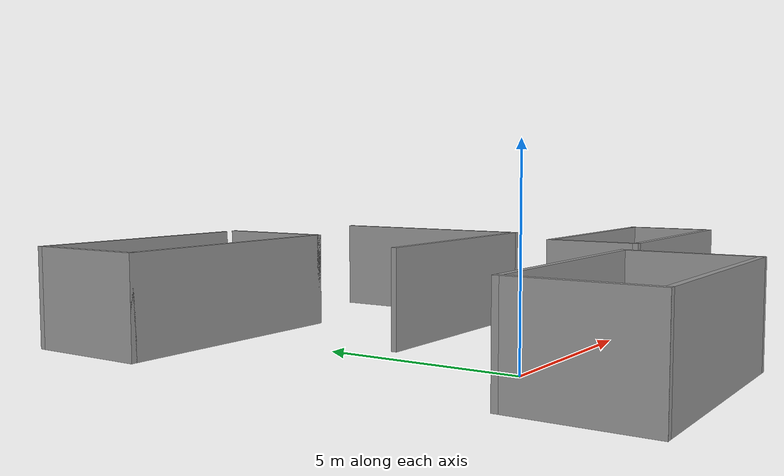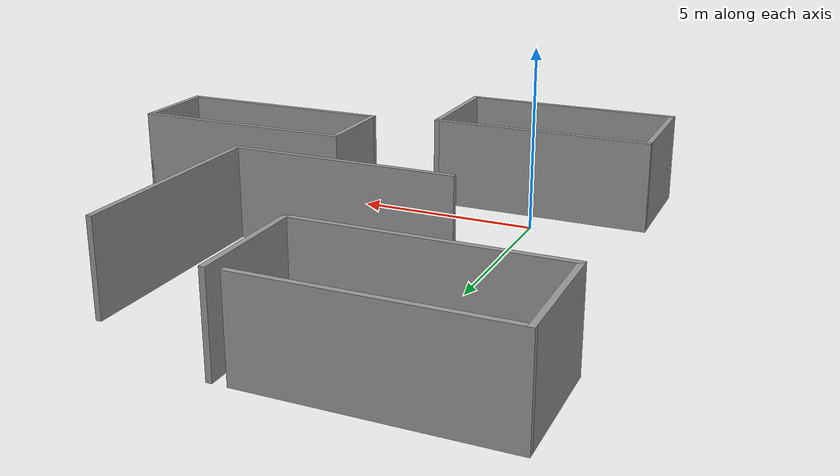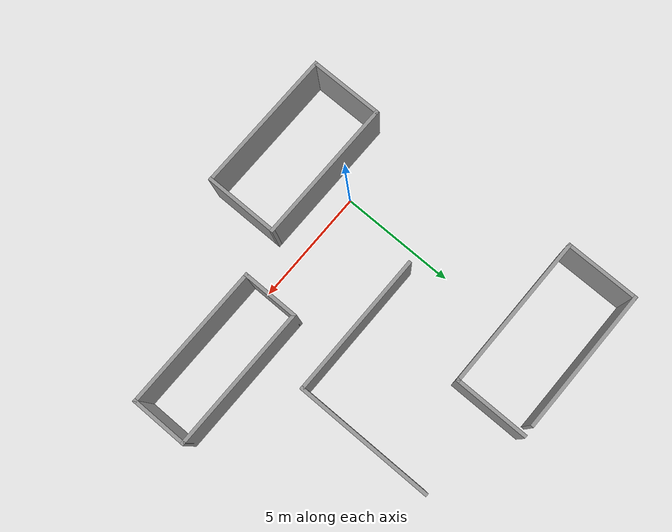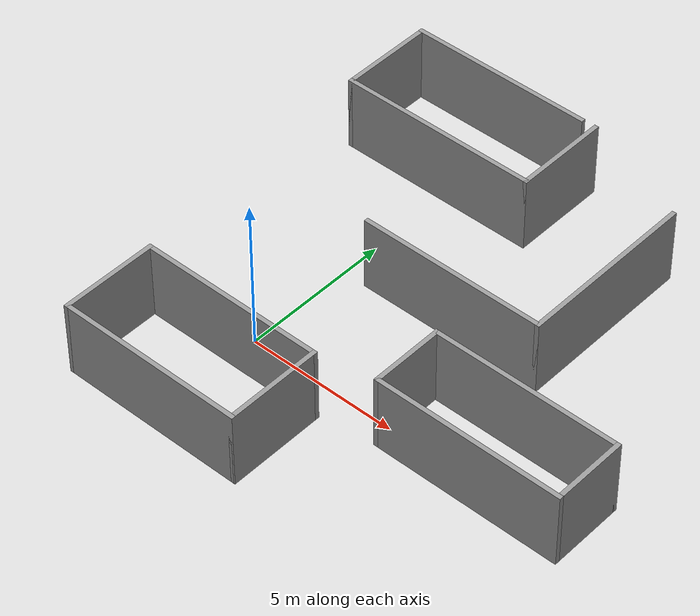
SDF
<?xml version='1.0'?>
<sdf version='1.6'>
  <model name='sim_world_diff_robot'>
    <pose frame=''>3.8281 3.45307 0 0 -0 0</pose>
    <link name='Wall_0'>
      <collision name='Wall_0_Collision'>
        <geometry>
          <box>
            <size>3.25 0.15 2.5</size>
          </box>
        </geometry>
        <pose frame=''>0 0 1.25 0 -0 0</pose>
      </collision>
      <visual name='Wall_0_Visual'>
        <pose frame=''>0 0 1.25 0 -0 0</pose>
        <geometry>
          <box>
            <size>3.25 0.15 2.5</size>
          </box>
        </geometry>
        <material>
          <script>
            <uri>file://media/materials/scripts/gazebo.material</uri>
            <name>Gazebo/Grey</name>
          </script>
          <ambient>1 1 1 1</ambient>
        </material>
        <meta>
          <layer>0</layer>
        </meta>
      </visual>
      <pose frame=''>-6.7281 -6.01307 0 0 -0 -1.5708</pose>
    </link>
    <link name='Wall_1'>
      <collision name='Wall_1_Collision'>
        <geometry>
          <box>
            <size>6.25 0.15 2.5</size>
          </box>
        </geometry>
        <pose frame=''>0 0 1.25 0 -0 0</pose>
      </collision>
      <visual name='Wall_1_Visual'>
        <pose frame=''>0 0 1.25 0 -0 0</pose>
        <geometry>
          <box>
            <size>6.25 0.15 2.5</size>
          </box>
        </geometry>
        <material>
          <script>
            <uri>file://media/materials/scripts/gazebo.material</uri>
            <name>Gazebo/Grey</name>
          </script>
          <ambient>1 1 1 1</ambient>
        </material>
        <meta>
          <layer>0</layer>
        </meta>
      </visual>
      <pose frame=''>-3.6781 -7.56307 0 0 -0 0</pose>
    </link>
    <link name='Wall_13'>
      <collision name='Wall_13_Collision'>
        <geometry>
          <box>
            <size>6.25 0.15 2.5</size>
          </box>
        </geometry>
        <pose frame=''>0 0 1.25 0 -0 0</pose>
      </collision>
      <visual name='Wall_13_Visual'>
        <pose frame=''>0 0 1.25 0 -0 0</pose>
        <geometry>
          <box>
            <size>6.25 0.15 2.5</size>
          </box>
        </geometry>
        <material>
          <script>
            <uri>file://media/materials/scripts/gazebo.material</uri>
            <name>Gazebo/Grey</name>
          </script>
          <ambient>1 1 1 1</ambient>
        </material>
        <meta>
          <layer>0</layer>
        </meta>
      </visual>
      <pose frame=''>-4.32459 7.56307 0 0 -0 3.14159</pose>
    </link>
    <link name='Wall_14'>
      <collision name='Wall_14_Collision'>
        <geometry>
          <box>
            <size>3.25 0.15 2.5</size>
          </box>
        </geometry>
        <pose frame=''>0 0 1.25 0 -0 0</pose>
      </collision>
      <visual name='Wall_14_Visual'>
        <pose frame=''>0 0 1.25 0 -0 0</pose>
        <geometry>
          <box>
            <size>3.25 0.15 2.5</size>
          </box>
        </geometry>
        <material>
          <script>
            <uri>file://media/materials/scripts/gazebo.material</uri>
            <name>Gazebo/Grey</name>
          </script>
          <ambient>1 1 1 1</ambient>
        </material>
        <meta>
          <layer>0</layer>
        </meta>
      </visual>
      <pose frame=''>-7.37459 6.01307 0 0 -0 -1.5708</pose>
    </link>
    <link name='Wall_15'>
      <collision name='Wall_15_Collision'>
        <geometry>
          <box>
            <size>6.75 0.15 2.5</size>
          </box>
        </geometry>
        <pose frame=''>0 0 1.25 0 -0 0</pose>
      </collision>
      <visual name='Wall_15_Visual'>
        <pose frame=''>0 0 1.25 0 -0 0</pose>
        <geometry>
          <box>
            <size>6.75 0.15 2.5</size>
          </box>
        </geometry>
        <material>
          <script>
            <uri>file://media/materials/scripts/gazebo.material</uri>
            <name>Gazebo/Grey</name>
          </script>
          <ambient>1 1 1 1</ambient>
        </material>
        <meta>
          <layer>0</layer>
        </meta>
      </visual>
      <pose frame=''>-4.07459 4.46307 0 0 -0 0</pose>
    </link>
    <link name='Wall_16'>
      <collision name='Wall_16_Collision'>
        <geometry>
          <box>
            <size>3.25 0.15 2.5</size>
          </box>
        </geometry>
        <pose frame=''>0 0 1.25 0 -0 0</pose>
      </collision>
      <visual name='Wall_16_Visual'>
        <pose frame=''>0 0 1.25 0 -0 0</pose>
        <geometry>
          <box>
            <size>3.25 0.15 2.5</size>
          </box>
        </geometry>
        <material>
          <script>
            <uri>file://media/materials/scripts/gazebo.material</uri>
            <name>Gazebo/Grey</name>
          </script>
          <ambient>1 1 1 1</ambient>
        </material>
        <meta>
          <layer>0</layer>
        </meta>
      </visual>
      <pose frame=''>-0.774586 6.01307 0 0 -0 1.5708</pose>
    </link>
    <link name='Wall_18'>
      <collision name='Wall_18_Collision'>
        <geometry>
          <box>
            <size>6.25 0.15 2.5</size>
          </box>
        </geometry>
        <pose frame=''>0 0 1.25 0 -0 0</pose>
      </collision>
      <visual name='Wall_18_Visual'>
        <pose frame=''>0 0 1.25 0 -0 0</pose>
        <geometry>
          <box>
            <size>6.25 0.15 2.5</size>
          </box>
        </geometry>
        <material>
          <script>
            <uri>file://media/materials/scripts/gazebo.material</uri>
            <name>Gazebo/Grey</name>
          </script>
          <ambient>1 1 1 1</ambient>
        </material>
        <meta>
          <layer>0</layer>
        </meta>
      </visual>
      <pose frame=''>0.065598 0.284211 0 0 -0 0</pose>
    </link>
    <link name='Wall_19'>
      <collision name='Wall_19_Collision'>
        <geometry>
          <box>
            <size>6 0.15 2.5</size>
          </box>
        </geometry>
        <pose frame=''>0 0 1.25 0 -0 0</pose>
      </collision>
      <visual name='Wall_19_Visual'>
        <pose frame=''>0 0 1.25 0 -0 0</pose>
        <geometry>
          <box>
            <size>6 0.15 2.5</size>
          </box>
        </geometry>
        <material>
          <script>
            <uri>file://media/materials/scripts/gazebo.material</uri>
            <name>Gazebo/Grey</name>
          </script>
          <ambient>1 1 1 1</ambient>
        </material>
        <meta>
          <layer>0</layer>
        </meta>
      </visual>
      <pose frame=''>3.1156 3.20921 0 0 -0 1.5708</pose>
    </link>
    <link name='Wall_2'>
      <collision name='Wall_2_Collision'>
        <geometry>
          <box>
            <size>3.25 0.15 2.5</size>
          </box>
        </geometry>
        <pose frame=''>0 0 1.25 0 -0 0</pose>
      </collision>
      <visual name='Wall_2_Visual'>
        <pose frame=''>0 0 1.25 0 -0 0</pose>
        <geometry>
          <box>
            <size>3.25 0.15 2.5</size>
          </box>
        </geometry>
        <material>
          <script>
            <uri>file://media/materials/scripts/gazebo.material</uri>
            <name>Gazebo/Grey</name>
          </script>
          <ambient>1 1 1 1</ambient>
        </material>
        <meta>
          <layer>0</layer>
        </meta>
      </visual>
      <pose frame=''>-0.628099 -6.01307 0 0 -0 1.5708</pose>
    </link>
    <link name='Wall_3'>
      <collision name='Wall_3_Collision'>
        <geometry>
          <box>
            <size>6.25 0.15 2.5</size>
          </box>
        </geometry>
        <pose frame=''>0 0 1.25 0 -0 0</pose>
      </collision>
      <visual name='Wall_3_Visual'>
        <pose frame=''>0 0 1.25 0 -0 0</pose>
        <geometry>
          <box>
            <size>6.25 0.15 2.5</size>
          </box>
        </geometry>
        <material>
          <script>
            <uri>file://media/materials/scripts/gazebo.material</uri>
            <name>Gazebo/Grey</name>
          </script>
          <ambient>1 1 1 1</ambient>
        </material>
        <meta>
          <layer>0</layer>
        </meta>
      </visual>
      <pose frame=''>-3.6781 -4.46307 0 0 -0 3.14159</pose>
    </link>
    <link name='Wall_5'>
      <collision name='Wall_5_Collision'>
        <geometry>
          <box>
            <size>6.25 0.15 2.5</size>
          </box>
        </geometry>
        <pose frame=''>0 0 1.25 0 -0 0</pose>
      </collision>
      <visual name='Wall_5_Visual'>
        <pose frame=''>0 0 1.25 0 -0 0</pose>
        <geometry>
          <box>
            <size>6.25 0.15 2.5</size>
          </box>
        </geometry>
        <material>
          <script>
            <uri>file://media/materials/scripts/gazebo.material</uri>
            <name>Gazebo/Grey</name>
          </script>
          <ambient>1 1 1 1</ambient>
        </material>
        <meta>
          <layer>0</layer>
        </meta>
      </visual>
      <pose frame=''>4.32459 -1.72591 0 0 -0 0</pose>
    </link>
    <link name='Wall_6'>
      <collision name='Wall_6_Collision'>
        <geometry>
          <box>
            <size>2.5 0.15 2.5</size>
          </box>
        </geometry>
        <pose frame=''>0 0 1.25 0 -0 0</pose>
      </collision>
      <visual name='Wall_6_Visual'>
        <pose frame=''>0 0 1.25 0 -0 0</pose>
        <geometry>
          <box>
            <size>2.5 0.15 2.5</size>
          </box>
        </geometry>
        <material>
          <script>
            <uri>file://media/materials/scripts/gazebo.material</uri>
            <name>Gazebo/Grey</name>
          </script>
          <ambient>1 1 1 1</ambient>
        </material>
        <meta>
          <layer>0</layer>
        </meta>
      </visual>
      <pose frame=''>7.37459 -2.90091 0 0 -0 -1.5708</pose>
    </link>
    <link name='Wall_7'>
      <collision name='Wall_7_Collision'>
        <geometry>
          <box>
            <size>6.25 0.15 2.5</size>
          </box>
        </geometry>
        <pose frame=''>0 0 1.25 0 -0 0</pose>
      </collision>
      <visual name='Wall_7_Visual'>
        <pose frame=''>0 0 1.25 0 -0 0</pose>
        <geometry>
          <box>
            <size>6.25 0.15 2.5</size>
          </box>
        </geometry>
        <material>
          <script>
            <uri>file://media/materials/scripts/gazebo.material</uri>
            <name>Gazebo/Grey</name>
          </script>
          <ambient>1 1 1 1</ambient>
        </material>
        <meta>
          <layer>0</layer>
        </meta>
      </visual>
      <pose frame=''>4.32459 -4.07591 0 0 -0 3.14159</pose>
    </link>
    <link name='Wall_8'>
      <collision name='Wall_8_Collision'>
        <geometry>
          <box>
            <size>2.5 0.15 2.5</size>
          </box>
        </geometry>
        <pose frame=''>0 0 1.25 0 -0 0</pose>
      </collision>
      <visual name='Wall_8_Visual'>
        <pose frame=''>0 0 1.25 0 -0 0</pose>
        <geometry>
          <box>
            <size>2.5 0.15 2.5</size>
          </box>
        </geometry>
        <material>
          <script>
            <uri>file://media/materials/scripts/gazebo.material</uri>
            <name>Gazebo/Grey</name>
          </script>
          <ambient>1 1 1 1</ambient>
        </material>
        <meta>
          <layer>0</layer>
        </meta>
      </visual>
      <pose frame=''>1.27459 -2.90091 0 0 -0 1.5708</pose>
    </link>
    <static>1</static>
  </model>
</sdf>
